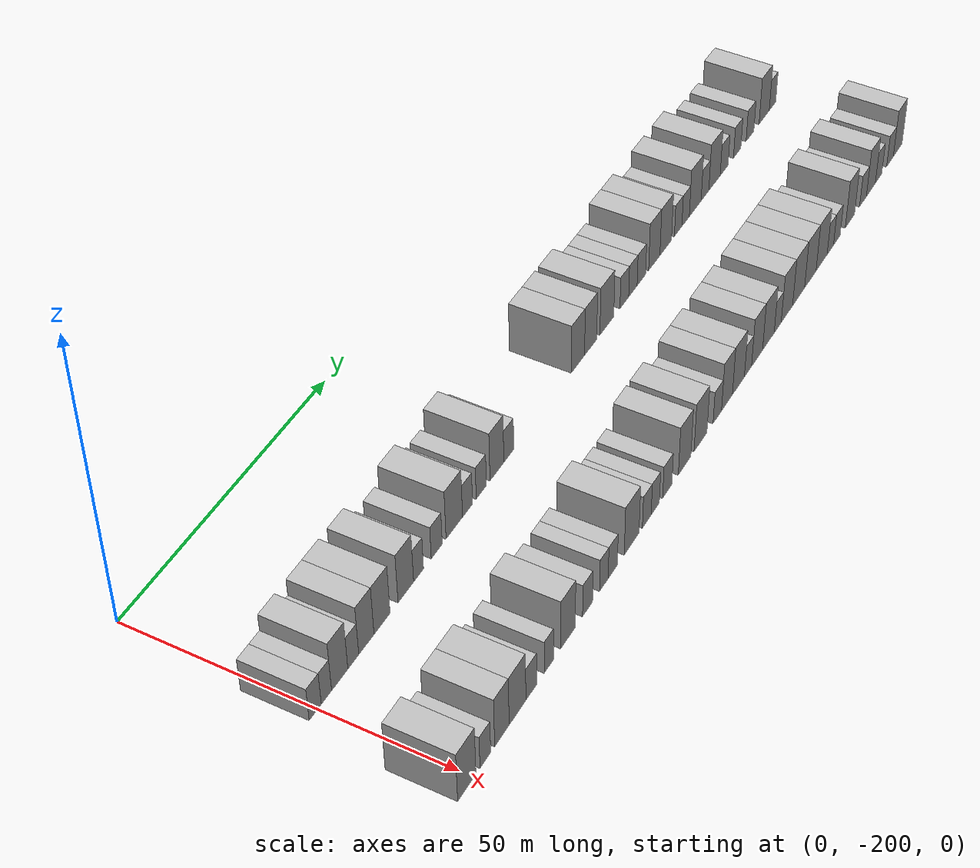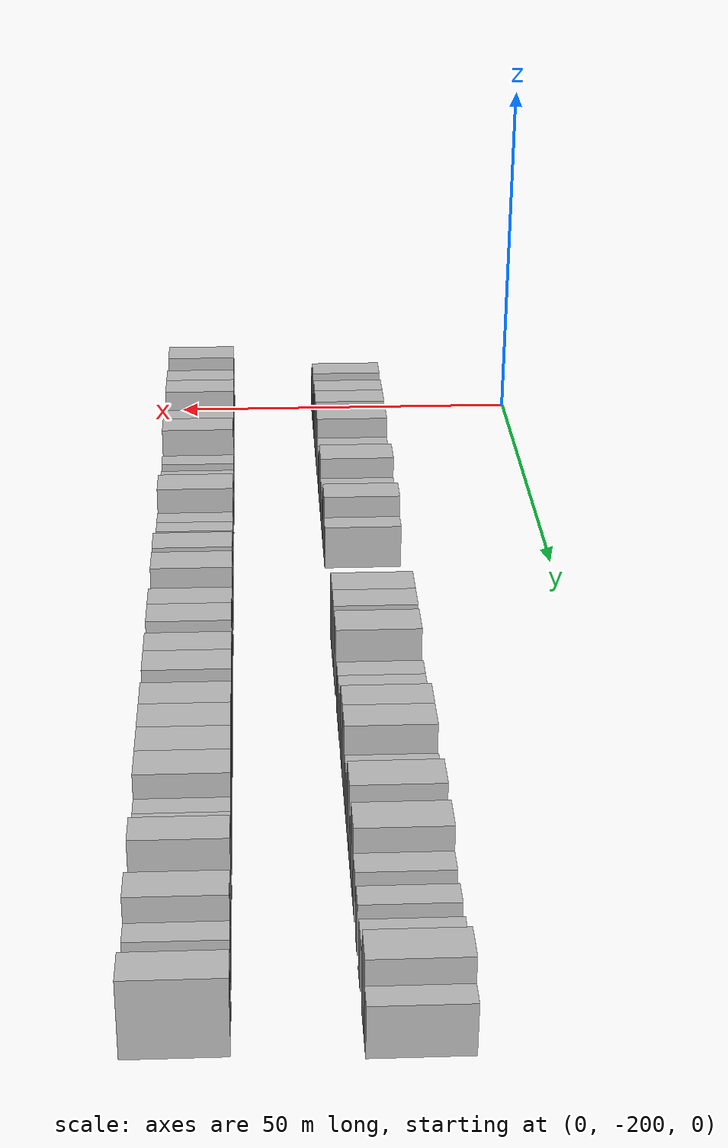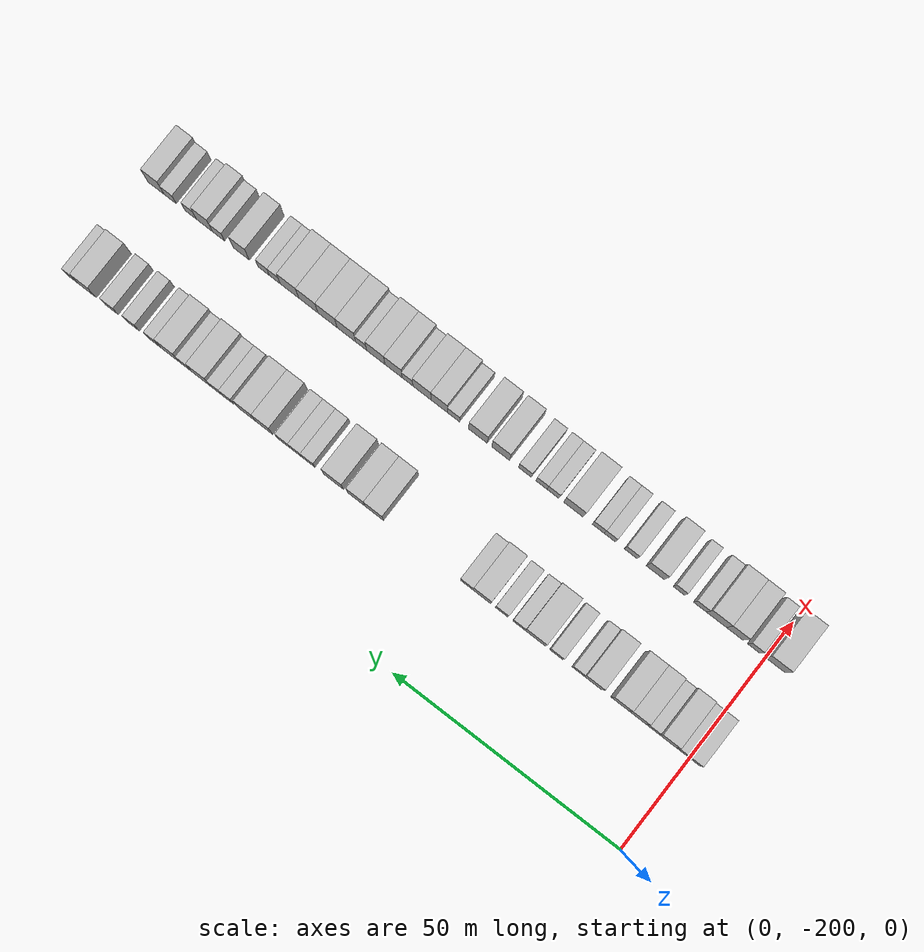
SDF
<sdf version="1.6">
 <world name="default">
  <model name="building_1">
   <static>1</static>
   <pose>25.0000 -200.5957 0 0.000000 0.000000 0.000000</pose>
   <link name="link">
    <pose>0 0 3.00 0 0 0</pose>
    <collision name="collision"><geometry><box><size>10.0000 2.8085 6.0000</size></box></geometry></collision>
    <visual name="visual">
     <cast_shadows>0</cast_shadows>
     <geometry><box><size>10.0000 2.8085 6.0000</size></box></geometry>
     <material>
      <script>
       <uri>model://HANNAS_wall/materials/scripts</uri>
       <uri>model://HANNAS_wall/materials/textures</uri>
       <name>vrc/HANNAS_wall</name>
      </script>
     </material>
    </visual>
   </link>
  </model>
  <model name="building_2">
   <static>1</static>
   <pose>25.0000 -197.9848 0 0.000000 0.000000 0.000000</pose>
   <link name="link">
    <pose>0 0 3.00 0 0 0</pose>
    <collision name="collision"><geometry><box><size>10.0000 2.4134 6.0000</size></box></geometry></collision>
    <visual name="visual">
     <cast_shadows>0</cast_shadows>
     <geometry><box><size>10.0000 2.4134 6.0000</size></box></geometry>
     <material>
      <script>
       <uri>model://HANNAS_wall/materials/scripts</uri>
       <uri>model://HANNAS_wall/materials/textures</uri>
       <name>vrc/HANNAS_wall</name>
      </script>
     </material>
    </visual>
   </link>
  </model>
  <model name="building_3">
   <static>1</static>
   <pose>25.0000 -194.8523 0 0.000000 0.000000 0.000000</pose>
   <link name="link">
    <pose>0 0 4.50 0 0 0</pose>
    <collision name="collision"><geometry><box><size>10.0000 3.8517 9.0000</size></box></geometry></collision>
    <visual name="visual">
     <cast_shadows>0</cast_shadows>
     <geometry><box><size>10.0000 3.8517 9.0000</size></box></geometry>
     <material>
      <script>
       <uri>model://HANNAS_wall/materials/scripts</uri>
       <uri>model://HANNAS_wall/materials/textures</uri>
       <name>vrc/HANNAS_wall</name>
      </script>
     </material>
    </visual>
   </link>
  </model>
  <model name="building_4">
   <static>1</static>
   <pose>25.0000 -191.6137 0 0.000000 0.000000 0.000000</pose>
   <link name="link">
    <pose>0 0 3.00 0 0 0</pose>
    <collision name="collision"><geometry><box><size>10.0000 2.6255 6.0000</size></box></geometry></collision>
    <visual name="visual">
     <cast_shadows>0</cast_shadows>
     <geometry><box><size>10.0000 2.6255 6.0000</size></box></geometry>
     <material>
      <script>
       <uri>model://HANNAS_wall/materials/scripts</uri>
       <uri>model://HANNAS_wall/materials/textures</uri>
       <name>vrc/HANNAS_wall</name>
      </script>
     </material>
    </visual>
   </link>
  </model>
  <model name="building_5">
   <static>1</static>
   <pose>25.0000 -188.4409 0 0.000000 0.000000 0.000000</pose>
   <link name="link">
    <pose>0 0 4.50 0 0 0</pose>
    <collision name="collision"><geometry><box><size>10.0000 3.7200 9.0000</size></box></geometry></collision>
    <visual name="visual">
     <cast_shadows>0</cast_shadows>
     <geometry><box><size>10.0000 3.7200 9.0000</size></box></geometry>
     <material>
      <script>
       <uri>model://HANNAS_wall/materials/scripts</uri>
       <uri>model://HANNAS_wall/materials/textures</uri>
       <name>vrc/HANNAS_wall</name>
      </script>
     </material>
    </visual>
   </link>
  </model>
  <model name="building_6">
   <static>1</static>
   <pose>25.0000 -184.5921 0 0.000000 0.000000 0.000000</pose>
   <link name="link">
    <pose>0 0 4.50 0 0 0</pose>
    <collision name="collision"><geometry><box><size>10.0000 3.9776 9.0000</size></box></geometry></collision>
    <visual name="visual">
     <cast_shadows>0</cast_shadows>
     <geometry><box><size>10.0000 3.9776 9.0000</size></box></geometry>
     <material>
      <script>
       <uri>model://HANNAS_wall/materials/scripts</uri>
       <uri>model://HANNAS_wall/materials/textures</uri>
       <name>vrc/HANNAS_wall</name>
      </script>
     </material>
    </visual>
   </link>
  </model>
  <model name="building_7">
   <static>1</static>
   <pose>25.0000 -178.6157 0 0.000000 0.000000 0.000000</pose>
   <link name="link">
    <pose>0 0 4.50 0 0 0</pose>
    <collision name="collision"><geometry><box><size>10.0000 3.9752 9.0000</size></box></geometry></collision>
    <visual name="visual">
     <cast_shadows>0</cast_shadows>
     <geometry><box><size>10.0000 3.9752 9.0000</size></box></geometry>
     <material>
      <script>
       <uri>model://HANNAS_wall/materials/scripts</uri>
       <uri>model://HANNAS_wall/materials/textures</uri>
       <name>vrc/HANNAS_wall</name>
      </script>
     </material>
    </visual>
   </link>
  </model>
  <model name="building_8">
   <static>1</static>
   <pose>25.0000 -175.3538 0 0.000000 0.000000 0.000000</pose>
   <link name="link">
    <pose>0 0 3.00 0 0 0</pose>
    <collision name="collision"><geometry><box><size>10.0000 2.5488 6.0000</size></box></geometry></collision>
    <visual name="visual">
     <cast_shadows>0</cast_shadows>
     <geometry><box><size>10.0000 2.5488 6.0000</size></box></geometry>
     <material>
      <script>
       <uri>model://HANNAS_wall/materials/scripts</uri>
       <uri>model://HANNAS_wall/materials/textures</uri>
       <name>vrc/HANNAS_wall</name>
      </script>
     </material>
    </visual>
   </link>
  </model>
  <model name="building_9">
   <static>1</static>
   <pose>25.0000 -170.6239 0 0.000000 0.000000 0.000000</pose>
   <link name="link">
    <pose>0 0 3.00 0 0 0</pose>
    <collision name="collision"><geometry><box><size>10.0000 2.9109 6.0000</size></box></geometry></collision>
    <visual name="visual">
     <cast_shadows>0</cast_shadows>
     <geometry><box><size>10.0000 2.9109 6.0000</size></box></geometry>
     <material>
      <script>
       <uri>model://HANNAS_wall/materials/scripts</uri>
       <uri>model://HANNAS_wall/materials/textures</uri>
       <name>vrc/HANNAS_wall</name>
      </script>
     </material>
    </visual>
   </link>
  </model>
  <model name="building_10">
   <static>1</static>
   <pose>25.0000 -165.9567 0 0.000000 0.000000 0.000000</pose>
   <link name="link">
    <pose>0 0 4.50 0 0 0</pose>
    <collision name="collision"><geometry><box><size>10.0000 4.4236 9.0000</size></box></geometry></collision>
    <visual name="visual">
     <cast_shadows>0</cast_shadows>
     <geometry><box><size>10.0000 4.4236 9.0000</size></box></geometry>
     <material>
      <script>
       <uri>model://HANNAS_wall/materials/scripts</uri>
       <uri>model://HANNAS_wall/materials/textures</uri>
       <name>vrc/HANNAS_wall</name>
      </script>
     </material>
    </visual>
   </link>
  </model>
  <model name="building_11">
   <static>1</static>
   <pose>25.0000 -162.3852 0 0.000000 0.000000 0.000000</pose>
   <link name="link">
    <pose>0 0 3.00 0 0 0</pose>
    <collision name="collision"><geometry><box><size>10.0000 2.7193 6.0000</size></box></geometry></collision>
    <visual name="visual">
     <cast_shadows>0</cast_shadows>
     <geometry><box><size>10.0000 2.7193 6.0000</size></box></geometry>
     <material>
      <script>
       <uri>model://HANNAS_wall/materials/scripts</uri>
       <uri>model://HANNAS_wall/materials/textures</uri>
       <name>vrc/HANNAS_wall</name>
      </script>
     </material>
    </visual>
   </link>
  </model>
  <model name="building_12">
   <static>1</static>
   <pose>25.0000 -158.6169 0 0.000000 0.000000 0.000000</pose>
   <link name="link">
    <pose>0 0 3.00 0 0 0</pose>
    <collision name="collision"><geometry><box><size>10.0000 2.8173 6.0000</size></box></geometry></collision>
    <visual name="visual">
     <cast_shadows>0</cast_shadows>
     <geometry><box><size>10.0000 2.8173 6.0000</size></box></geometry>
     <material>
      <script>
       <uri>model://HANNAS_wall/materials/scripts</uri>
       <uri>model://HANNAS_wall/materials/textures</uri>
       <name>vrc/HANNAS_wall</name>
      </script>
     </material>
    </visual>
   </link>
  </model>
  <model name="building_13">
   <static>1</static>
   <pose>25.0000 -154.2598 0 0.000000 0.000000 0.000000</pose>
   <link name="link">
    <pose>0 0 4.50 0 0 0</pose>
    <collision name="collision"><geometry><box><size>10.0000 3.8968 9.0000</size></box></geometry></collision>
    <visual name="visual">
     <cast_shadows>0</cast_shadows>
     <geometry><box><size>10.0000 3.8968 9.0000</size></box></geometry>
     <material>
      <script>
       <uri>model://HANNAS_wall/materials/scripts</uri>
       <uri>model://HANNAS_wall/materials/textures</uri>
       <name>vrc/HANNAS_wall</name>
      </script>
     </material>
    </visual>
   </link>
  </model>
  <model name="building_14">
   <static>1</static>
   <pose>25.0000 -150.8935 0 0.000000 0.000000 0.000000</pose>
   <link name="link">
    <pose>0 0 3.00 0 0 0</pose>
    <collision name="collision"><geometry><box><size>10.0000 2.8358 6.0000</size></box></geometry></collision>
    <visual name="visual">
     <cast_shadows>0</cast_shadows>
     <geometry><box><size>10.0000 2.8358 6.0000</size></box></geometry>
     <material>
      <script>
       <uri>model://HANNAS_wall/materials/scripts</uri>
       <uri>model://HANNAS_wall/materials/textures</uri>
       <name>vrc/HANNAS_wall</name>
      </script>
     </material>
    </visual>
   </link>
  </model>
  <model name="building_15">
   <static>1</static>
   <pose>25.0000 -130.3425 0 0.000000 0.000000 0.000000</pose>
   <link name="link">
    <pose>0 0 4.50 0 0 0</pose>
    <collision name="collision"><geometry><box><size>10.0000 4.0888 9.0000</size></box></geometry></collision>
    <visual name="visual">
     <cast_shadows>0</cast_shadows>
     <geometry><box><size>10.0000 4.0888 9.0000</size></box></geometry>
     <material>
      <script>
       <uri>model://HANNAS_wall/materials/scripts</uri>
       <uri>model://HANNAS_wall/materials/textures</uri>
       <name>vrc/HANNAS_wall</name>
      </script>
     </material>
    </visual>
   </link>
  </model>
  <model name="building_16">
   <static>1</static>
   <pose>25.0000 -126.3942 0 0.000000 0.000000 0.000000</pose>
   <link name="link">
    <pose>0 0 4.50 0 0 0</pose>
    <collision name="collision"><geometry><box><size>10.0000 3.8078 9.0000</size></box></geometry></collision>
    <visual name="visual">
     <cast_shadows>0</cast_shadows>
     <geometry><box><size>10.0000 3.8078 9.0000</size></box></geometry>
     <material>
      <script>
       <uri>model://HANNAS_wall/materials/scripts</uri>
       <uri>model://HANNAS_wall/materials/textures</uri>
       <name>vrc/HANNAS_wall</name>
      </script>
     </material>
    </visual>
   </link>
  </model>
  <model name="building_17">
   <static>1</static>
   <pose>25.0000 -121.2702 0 0.000000 0.000000 0.000000</pose>
   <link name="link">
    <pose>0 0 4.50 0 0 0</pose>
    <collision name="collision"><geometry><box><size>10.0000 4.4401 9.0000</size></box></geometry></collision>
    <visual name="visual">
     <cast_shadows>0</cast_shadows>
     <geometry><box><size>10.0000 4.4401 9.0000</size></box></geometry>
     <material>
      <script>
       <uri>model://HANNAS_wall/materials/scripts</uri>
       <uri>model://HANNAS_wall/materials/textures</uri>
       <name>vrc/HANNAS_wall</name>
      </script>
     </material>
    </visual>
   </link>
  </model>
  <model name="building_18">
   <static>1</static>
   <pose>25.0000 -115.6292 0 0.000000 0.000000 0.000000</pose>
   <link name="link">
    <pose>0 0 3.00 0 0 0</pose>
    <collision name="collision"><geometry><box><size>10.0000 2.8419 6.0000</size></box></geometry></collision>
    <visual name="visual">
     <cast_shadows>0</cast_shadows>
     <geometry><box><size>10.0000 2.8419 6.0000</size></box></geometry>
     <material>
      <script>
       <uri>model://HANNAS_wall/materials/scripts</uri>
       <uri>model://HANNAS_wall/materials/textures</uri>
       <name>vrc/HANNAS_wall</name>
      </script>
     </material>
    </visual>
   </link>
  </model>
  <model name="building_19">
   <static>1</static>
   <pose>25.0000 -112.8165 0 0.000000 0.000000 0.000000</pose>
   <link name="link">
    <pose>0 0 3.00 0 0 0</pose>
    <collision name="collision"><geometry><box><size>10.0000 2.7835 6.0000</size></box></geometry></collision>
    <visual name="visual">
     <cast_shadows>0</cast_shadows>
     <geometry><box><size>10.0000 2.7835 6.0000</size></box></geometry>
     <material>
      <script>
       <uri>model://HANNAS_wall/materials/scripts</uri>
       <uri>model://HANNAS_wall/materials/textures</uri>
       <name>vrc/HANNAS_wall</name>
      </script>
     </material>
    </visual>
   </link>
  </model>
  <model name="building_20">
   <static>1</static>
   <pose>25.0000 -110.0008 0 0.000000 0.000000 0.000000</pose>
   <link name="link">
    <pose>0 0 3.00 0 0 0</pose>
    <collision name="collision"><geometry><box><size>10.0000 2.8480 6.0000</size></box></geometry></collision>
    <visual name="visual">
     <cast_shadows>0</cast_shadows>
     <geometry><box><size>10.0000 2.8480 6.0000</size></box></geometry>
     <material>
      <script>
       <uri>model://HANNAS_wall/materials/scripts</uri>
       <uri>model://HANNAS_wall/materials/textures</uri>
       <name>vrc/HANNAS_wall</name>
      </script>
     </material>
    </visual>
   </link>
  </model>
  <model name="building_21">
   <static>1</static>
   <pose>25.0000 -105.6616 0 0.000000 0.000000 0.000000</pose>
   <link name="link">
    <pose>0 0 4.50 0 0 0</pose>
    <collision name="collision"><geometry><box><size>10.0000 3.8304 9.0000</size></box></geometry></collision>
    <visual name="visual">
     <cast_shadows>0</cast_shadows>
     <geometry><box><size>10.0000 3.8304 9.0000</size></box></geometry>
     <material>
      <script>
       <uri>model://HANNAS_wall/materials/scripts</uri>
       <uri>model://HANNAS_wall/materials/textures</uri>
       <name>vrc/HANNAS_wall</name>
      </script>
     </material>
    </visual>
   </link>
  </model>
  <model name="building_22">
   <static>1</static>
   <pose>25.0000 -101.7530 0 0.000000 0.000000 0.000000</pose>
   <link name="link">
    <pose>0 0 4.50 0 0 0</pose>
    <collision name="collision"><geometry><box><size>10.0000 3.9868 9.0000</size></box></geometry></collision>
    <visual name="visual">
     <cast_shadows>0</cast_shadows>
     <geometry><box><size>10.0000 3.9868 9.0000</size></box></geometry>
     <material>
      <script>
       <uri>model://HANNAS_wall/materials/scripts</uri>
       <uri>model://HANNAS_wall/materials/textures</uri>
       <name>vrc/HANNAS_wall</name>
      </script>
     </material>
    </visual>
   </link>
  </model>
  <model name="building_23">
   <static>1</static>
   <pose>25.0000 -97.4480 0 0.000000 0.000000 0.000000</pose>
   <link name="link">
    <pose>0 0 3.00 0 0 0</pose>
    <collision name="collision"><geometry><box><size>10.0000 2.6234 6.0000</size></box></geometry></collision>
    <visual name="visual">
     <cast_shadows>0</cast_shadows>
     <geometry><box><size>10.0000 2.6234 6.0000</size></box></geometry>
     <material>
      <script>
       <uri>model://HANNAS_wall/materials/scripts</uri>
       <uri>model://HANNAS_wall/materials/textures</uri>
       <name>vrc/HANNAS_wall</name>
      </script>
     </material>
    </visual>
   </link>
  </model>
  <model name="building_24">
   <static>1</static>
   <pose>25.0000 -94.8192 0 0.000000 0.000000 0.000000</pose>
   <link name="link">
    <pose>0 0 3.00 0 0 0</pose>
    <collision name="collision"><geometry><box><size>10.0000 2.6342 6.0000</size></box></geometry></collision>
    <visual name="visual">
     <cast_shadows>0</cast_shadows>
     <geometry><box><size>10.0000 2.6342 6.0000</size></box></geometry>
     <material>
      <script>
       <uri>model://HANNAS_wall/materials/scripts</uri>
       <uri>model://HANNAS_wall/materials/textures</uri>
       <name>vrc/HANNAS_wall</name>
      </script>
     </material>
    </visual>
   </link>
  </model>
  <model name="building_25">
   <static>1</static>
   <pose>25.0000 -91.3993 0 0.000000 0.000000 0.000000</pose>
   <link name="link">
    <pose>0 0 4.50 0 0 0</pose>
    <collision name="collision"><geometry><box><size>10.0000 4.2055 9.0000</size></box></geometry></collision>
    <visual name="visual">
     <cast_shadows>0</cast_shadows>
     <geometry><box><size>10.0000 4.2055 9.0000</size></box></geometry>
     <material>
      <script>
       <uri>model://HANNAS_wall/materials/scripts</uri>
       <uri>model://HANNAS_wall/materials/textures</uri>
       <name>vrc/HANNAS_wall</name>
      </script>
     </material>
    </visual>
   </link>
  </model>
  <model name="building_26">
   <static>1</static>
   <pose>25.0000 -87.9068 0 0.000000 0.000000 0.000000</pose>
   <link name="link">
    <pose>0 0 3.00 0 0 0</pose>
    <collision name="collision"><geometry><box><size>10.0000 2.7796 6.0000</size></box></geometry></collision>
    <visual name="visual">
     <cast_shadows>0</cast_shadows>
     <geometry><box><size>10.0000 2.7796 6.0000</size></box></geometry>
     <material>
      <script>
       <uri>model://HANNAS_wall/materials/scripts</uri>
       <uri>model://HANNAS_wall/materials/textures</uri>
       <name>vrc/HANNAS_wall</name>
      </script>
     </material>
    </visual>
   </link>
  </model>
  <model name="building_27">
   <static>1</static>
   <pose>25.0000 -84.4294 0 0.000000 0.000000 0.000000</pose>
   <link name="link">
    <pose>0 0 4.50 0 0 0</pose>
    <collision name="collision"><geometry><box><size>10.0000 4.1752 9.0000</size></box></geometry></collision>
    <visual name="visual">
     <cast_shadows>0</cast_shadows>
     <geometry><box><size>10.0000 4.1752 9.0000</size></box></geometry>
     <material>
      <script>
       <uri>model://HANNAS_wall/materials/scripts</uri>
       <uri>model://HANNAS_wall/materials/textures</uri>
       <name>vrc/HANNAS_wall</name>
      </script>
     </material>
    </visual>
   </link>
  </model>
  <model name="building_28">
   <static>1</static>
   <pose>25.0000 -80.8772 0 0.000000 0.000000 0.000000</pose>
   <link name="link">
    <pose>0 0 3.00 0 0 0</pose>
    <collision name="collision"><geometry><box><size>10.0000 2.9291 6.0000</size></box></geometry></collision>
    <visual name="visual">
     <cast_shadows>0</cast_shadows>
     <geometry><box><size>10.0000 2.9291 6.0000</size></box></geometry>
     <material>
      <script>
       <uri>model://HANNAS_wall/materials/scripts</uri>
       <uri>model://HANNAS_wall/materials/textures</uri>
       <name>vrc/HANNAS_wall</name>
      </script>
     </material>
    </visual>
   </link>
  </model>
  <model name="building_29">
   <static>1</static>
   <pose>25.0000 -76.0206 0 0.000000 0.000000 0.000000</pose>
   <link name="link">
    <pose>0 0 3.00 0 0 0</pose>
    <collision name="collision"><geometry><box><size>10.0000 2.7842 6.0000</size></box></geometry></collision>
    <visual name="visual">
     <cast_shadows>0</cast_shadows>
     <geometry><box><size>10.0000 2.7842 6.0000</size></box></geometry>
     <material>
      <script>
       <uri>model://HANNAS_wall/materials/scripts</uri>
       <uri>model://HANNAS_wall/materials/textures</uri>
       <name>vrc/HANNAS_wall</name>
      </script>
     </material>
    </visual>
   </link>
  </model>
  <model name="building_30">
   <static>1</static>
   <pose>25.0000 -71.1401 0 0.000000 0.000000 0.000000</pose>
   <link name="link">
    <pose>0 0 3.00 0 0 0</pose>
    <collision name="collision"><geometry><box><size>10.0000 2.9768 6.0000</size></box></geometry></collision>
    <visual name="visual">
     <cast_shadows>0</cast_shadows>
     <geometry><box><size>10.0000 2.9768 6.0000</size></box></geometry>
     <material>
      <script>
       <uri>model://HANNAS_wall/materials/scripts</uri>
       <uri>model://HANNAS_wall/materials/textures</uri>
       <name>vrc/HANNAS_wall</name>
      </script>
     </material>
    </visual>
   </link>
  </model>
  <model name="building_31">
   <static>1</static>
   <pose>25.0000 -65.6525 0 0.000000 0.000000 0.000000</pose>
   <link name="link">
    <pose>0 0 4.50 0 0 0</pose>
    <collision name="collision"><geometry><box><size>10.0000 3.9983 9.0000</size></box></geometry></collision>
    <visual name="visual">
     <cast_shadows>0</cast_shadows>
     <geometry><box><size>10.0000 3.9983 9.0000</size></box></geometry>
     <material>
      <script>
       <uri>model://HANNAS_wall/materials/scripts</uri>
       <uri>model://HANNAS_wall/materials/textures</uri>
       <name>vrc/HANNAS_wall</name>
      </script>
     </material>
    </visual>
   </link>
  </model>
  <model name="building_32">
   <static>1</static>
   <pose>25.0000 -62.3743 0 0.000000 0.000000 0.000000</pose>
   <link name="link">
    <pose>0 0 3.00 0 0 0</pose>
    <collision name="collision"><geometry><box><size>10.0000 2.5583 6.0000</size></box></geometry></collision>
    <visual name="visual">
     <cast_shadows>0</cast_shadows>
     <geometry><box><size>10.0000 2.5583 6.0000</size></box></geometry>
     <material>
      <script>
       <uri>model://HANNAS_wall/materials/scripts</uri>
       <uri>model://HANNAS_wall/materials/textures</uri>
       <name>vrc/HANNAS_wall</name>
      </script>
     </material>
    </visual>
   </link>
  </model>
  <model name="building_98">
   <static>1</static>
   <pose>47.0000 -201.7715 0 0.000000 0.000000 0.000000</pose>
   <link name="link">
    <pose>0 0 4.50 0 0 0</pose>
    <collision name="collision"><geometry><box><size>10.0000 4.4571 9.0000</size></box></geometry></collision>
    <visual name="visual">
     <cast_shadows>0</cast_shadows>
     <geometry><box><size>10.0000 4.4571 9.0000</size></box></geometry>
     <material>
      <script>
       <uri>model://HANNAS_wall/materials/scripts</uri>
       <uri>model://HANNAS_wall/materials/textures</uri>
       <name>vrc/HANNAS_wall</name>
      </script>
     </material>
    </visual>
   </link>
  </model>
  <model name="building_99">
   <static>1</static>
   <pose>47.0000 -197.2151 0 0.000000 0.000000 0.000000</pose>
   <link name="link">
    <pose>0 0 3.00 0 0 0</pose>
    <collision name="collision"><geometry><box><size>10.0000 2.6555 6.0000</size></box></geometry></collision>
    <visual name="visual">
     <cast_shadows>0</cast_shadows>
     <geometry><box><size>10.0000 2.6555 6.0000</size></box></geometry>
     <material>
      <script>
       <uri>model://HANNAS_wall/materials/scripts</uri>
       <uri>model://HANNAS_wall/materials/textures</uri>
       <name>vrc/HANNAS_wall</name>
      </script>
     </material>
    </visual>
   </link>
  </model>
  <model name="building_100">
   <static>1</static>
   <pose>47.0000 -193.0493 0 0.000000 0.000000 0.000000</pose>
   <link name="link">
    <pose>0 0 4.50 0 0 0</pose>
    <collision name="collision"><geometry><box><size>10.0000 3.6762 9.0000</size></box></geometry></collision>
    <visual name="visual">
     <cast_shadows>0</cast_shadows>
     <geometry><box><size>10.0000 3.6762 9.0000</size></box></geometry>
     <material>
      <script>
       <uri>model://HANNAS_wall/materials/scripts</uri>
       <uri>model://HANNAS_wall/materials/textures</uri>
       <name>vrc/HANNAS_wall</name>
      </script>
     </material>
    </visual>
   </link>
  </model>
  <model name="building_101">
   <static>1</static>
   <pose>47.0000 -189.0503 0 0.000000 0.000000 0.000000</pose>
   <link name="link">
    <pose>0 0 4.50 0 0 0</pose>
    <collision name="collision"><geometry><box><size>10.0000 4.3217 9.0000</size></box></geometry></collision>
    <visual name="visual">
     <cast_shadows>0</cast_shadows>
     <geometry><box><size>10.0000 4.3217 9.0000</size></box></geometry>
     <material>
      <script>
       <uri>model://HANNAS_wall/materials/scripts</uri>
       <uri>model://HANNAS_wall/materials/textures</uri>
       <name>vrc/HANNAS_wall</name>
      </script>
     </material>
    </visual>
   </link>
  </model>
  <model name="building_102">
   <static>1</static>
   <pose>47.0000 -185.4716 0 0.000000 0.000000 0.000000</pose>
   <link name="link">
    <pose>0 0 3.00 0 0 0</pose>
    <collision name="collision"><geometry><box><size>10.0000 2.8357 6.0000</size></box></geometry></collision>
    <visual name="visual">
     <cast_shadows>0</cast_shadows>
     <geometry><box><size>10.0000 2.8357 6.0000</size></box></geometry>
     <material>
      <script>
       <uri>model://HANNAS_wall/materials/scripts</uri>
       <uri>model://HANNAS_wall/materials/textures</uri>
       <name>vrc/HANNAS_wall</name>
      </script>
     </material>
    </visual>
   </link>
  </model>
  <model name="building_103">
   <static>1</static>
   <pose>47.0000 -180.8310 0 0.000000 0.000000 0.000000</pose>
   <link name="link">
    <pose>0 0 3.00 0 0 0</pose>
    <collision name="collision"><geometry><box><size>10.0000 2.4455 6.0000</size></box></geometry></collision>
    <visual name="visual">
     <cast_shadows>0</cast_shadows>
     <geometry><box><size>10.0000 2.4455 6.0000</size></box></geometry>
     <material>
      <script>
       <uri>model://HANNAS_wall/materials/scripts</uri>
       <uri>model://HANNAS_wall/materials/textures</uri>
       <name>vrc/HANNAS_wall</name>
      </script>
     </material>
    </visual>
   </link>
  </model>
  <model name="building_104">
   <static>1</static>
   <pose>47.0000 -175.6263 0 0.000000 0.000000 0.000000</pose>
   <link name="link">
    <pose>0 0 4.50 0 0 0</pose>
    <collision name="collision"><geometry><box><size>10.0000 3.9639 9.0000</size></box></geometry></collision>
    <visual name="visual">
     <cast_shadows>0</cast_shadows>
     <geometry><box><size>10.0000 3.9639 9.0000</size></box></geometry>
     <material>
      <script>
       <uri>model://HANNAS_wall/materials/scripts</uri>
       <uri>model://HANNAS_wall/materials/textures</uri>
       <name>vrc/HANNAS_wall</name>
      </script>
     </material>
    </visual>
   </link>
  </model>
  <model name="building_105">
   <static>1</static>
   <pose>47.0000 -170.2367 0 0.000000 0.000000 0.000000</pose>
   <link name="link">
    <pose>0 0 3.00 0 0 0</pose>
    <collision name="collision"><geometry><box><size>10.0000 2.8152 6.0000</size></box></geometry></collision>
    <visual name="visual">
     <cast_shadows>0</cast_shadows>
     <geometry><box><size>10.0000 2.8152 6.0000</size></box></geometry>
     <material>
      <script>
       <uri>model://HANNAS_wall/materials/scripts</uri>
       <uri>model://HANNAS_wall/materials/textures</uri>
       <name>vrc/HANNAS_wall</name>
      </script>
     </material>
    </visual>
   </link>
  </model>
  <model name="building_106">
   <static>1</static>
   <pose>47.0000 -165.6050 0 0.000000 0.000000 0.000000</pose>
   <link name="link">
    <pose>0 0 3.00 0 0 0</pose>
    <collision name="collision"><geometry><box><size>10.0000 2.4483 6.0000</size></box></geometry></collision>
    <visual name="visual">
     <cast_shadows>0</cast_shadows>
     <geometry><box><size>10.0000 2.4483 6.0000</size></box></geometry>
     <material>
      <script>
       <uri>model://HANNAS_wall/materials/scripts</uri>
       <uri>model://HANNAS_wall/materials/textures</uri>
       <name>vrc/HANNAS_wall</name>
      </script>
     </material>
    </visual>
   </link>
  </model>
  <model name="building_107">
   <static>1</static>
   <pose>47.0000 -163.0624 0 0.000000 0.000000 0.000000</pose>
   <link name="link">
    <pose>0 0 3.00 0 0 0</pose>
    <collision name="collision"><geometry><box><size>10.0000 2.6369 6.0000</size></box></geometry></collision>
    <visual name="visual">
     <cast_shadows>0</cast_shadows>
     <geometry><box><size>10.0000 2.6369 6.0000</size></box></geometry>
     <material>
      <script>
       <uri>model://HANNAS_wall/materials/scripts</uri>
       <uri>model://HANNAS_wall/materials/textures</uri>
       <name>vrc/HANNAS_wall</name>
      </script>
     </material>
    </visual>
   </link>
  </model>
  <model name="building_108">
   <static>1</static>
   <pose>47.0000 -157.5596 0 0.000000 0.000000 0.000000</pose>
   <link name="link">
    <pose>0 0 4.50 0 0 0</pose>
    <collision name="collision"><geometry><box><size>10.0000 4.3688 9.0000</size></box></geometry></collision>
    <visual name="visual">
     <cast_shadows>0</cast_shadows>
     <geometry><box><size>10.0000 4.3688 9.0000</size></box></geometry>
     <material>
      <script>
       <uri>model://HANNAS_wall/materials/scripts</uri>
       <uri>model://HANNAS_wall/materials/textures</uri>
       <name>vrc/HANNAS_wall</name>
      </script>
     </material>
    </visual>
   </link>
  </model>
  <model name="building_109">
   <static>1</static>
   <pose>47.0000 -153.0575 0 0.000000 0.000000 0.000000</pose>
   <link name="link">
    <pose>0 0 3.00 0 0 0</pose>
    <collision name="collision"><geometry><box><size>10.0000 2.6354 6.0000</size></box></geometry></collision>
    <visual name="visual">
     <cast_shadows>0</cast_shadows>
     <geometry><box><size>10.0000 2.6354 6.0000</size></box></geometry>
     <material>
      <script>
       <uri>model://HANNAS_wall/materials/scripts</uri>
       <uri>model://HANNAS_wall/materials/textures</uri>
       <name>vrc/HANNAS_wall</name>
      </script>
     </material>
    </visual>
   </link>
  </model>
  <model name="building_110">
   <static>1</static>
   <pose>47.0000 -150.4863 0 0.000000 0.000000 0.000000</pose>
   <link name="link">
    <pose>0 0 3.00 0 0 0</pose>
    <collision name="collision"><geometry><box><size>10.0000 2.5068 6.0000</size></box></geometry></collision>
    <visual name="visual">
     <cast_shadows>0</cast_shadows>
     <geometry><box><size>10.0000 2.5068 6.0000</size></box></geometry>
     <material>
      <script>
       <uri>model://HANNAS_wall/materials/scripts</uri>
       <uri>model://HANNAS_wall/materials/textures</uri>
       <name>vrc/HANNAS_wall</name>
      </script>
     </material>
    </visual>
   </link>
  </model>
  <model name="building_111">
   <static>1</static>
   <pose>47.0000 -146.8004 0 0.000000 0.000000 0.000000</pose>
   <link name="link">
    <pose>0 0 3.00 0 0 0</pose>
    <collision name="collision"><geometry><box><size>10.0000 2.8651 6.0000</size></box></geometry></collision>
    <visual name="visual">
     <cast_shadows>0</cast_shadows>
     <geometry><box><size>10.0000 2.8651 6.0000</size></box></geometry>
     <material>
      <script>
       <uri>model://HANNAS_wall/materials/scripts</uri>
       <uri>model://HANNAS_wall/materials/textures</uri>
       <name>vrc/HANNAS_wall</name>
      </script>
     </material>
    </visual>
   </link>
  </model>
  <model name="building_112">
   <static>1</static>
   <pose>47.0000 -141.3856 0 0.000000 0.000000 0.000000</pose>
   <link name="link">
    <pose>0 0 4.50 0 0 0</pose>
    <collision name="collision"><geometry><box><size>10.0000 3.9644 9.0000</size></box></geometry></collision>
    <visual name="visual">
     <cast_shadows>0</cast_shadows>
     <geometry><box><size>10.0000 3.9644 9.0000</size></box></geometry>
     <material>
      <script>
       <uri>model://HANNAS_wall/materials/scripts</uri>
       <uri>model://HANNAS_wall/materials/textures</uri>
       <name>vrc/HANNAS_wall</name>
      </script>
     </material>
    </visual>
   </link>
  </model>
  <model name="building_113">
   <static>1</static>
   <pose>47.0000 -136.3182 0 0.000000 0.000000 0.000000</pose>
   <link name="link">
    <pose>0 0 4.50 0 0 0</pose>
    <collision name="collision"><geometry><box><size>10.0000 4.1704 9.0000</size></box></geometry></collision>
    <visual name="visual">
     <cast_shadows>0</cast_shadows>
     <geometry><box><size>10.0000 4.1704 9.0000</size></box></geometry>
     <material>
      <script>
       <uri>model://HANNAS_wall/materials/scripts</uri>
       <uri>model://HANNAS_wall/materials/textures</uri>
       <name>vrc/HANNAS_wall</name>
      </script>
     </material>
    </visual>
   </link>
  </model>
  <model name="building_114">
   <static>1</static>
   <pose>47.0000 -130.8496 0 0.000000 0.000000 0.000000</pose>
   <link name="link">
    <pose>0 0 3.00 0 0 0</pose>
    <collision name="collision"><geometry><box><size>10.0000 2.7667 6.0000</size></box></geometry></collision>
    <visual name="visual">
     <cast_shadows>0</cast_shadows>
     <geometry><box><size>10.0000 2.7667 6.0000</size></box></geometry>
     <material>
      <script>
       <uri>model://HANNAS_wall/materials/scripts</uri>
       <uri>model://HANNAS_wall/materials/textures</uri>
       <name>vrc/HANNAS_wall</name>
      </script>
     </material>
    </visual>
   </link>
  </model>
  <model name="building_115">
   <static>1</static>
   <pose>47.0000 -127.6435 0 0.000000 0.000000 0.000000</pose>
   <link name="link">
    <pose>0 0 4.50 0 0 0</pose>
    <collision name="collision"><geometry><box><size>10.0000 3.6454 9.0000</size></box></geometry></collision>
    <visual name="visual">
     <cast_shadows>0</cast_shadows>
     <geometry><box><size>10.0000 3.6454 9.0000</size></box></geometry>
     <material>
      <script>
       <uri>model://HANNAS_wall/materials/scripts</uri>
       <uri>model://HANNAS_wall/materials/textures</uri>
       <name>vrc/HANNAS_wall</name>
      </script>
     </material>
    </visual>
   </link>
  </model>
  <model name="building_116">
   <static>1</static>
   <pose>47.0000 -123.8031 0 0.000000 0.000000 0.000000</pose>
   <link name="link">
    <pose>0 0 4.50 0 0 0</pose>
    <collision name="collision"><geometry><box><size>10.0000 4.0355 9.0000</size></box></geometry></collision>
    <visual name="visual">
     <cast_shadows>0</cast_shadows>
     <geometry><box><size>10.0000 4.0355 9.0000</size></box></geometry>
     <material>
      <script>
       <uri>model://HANNAS_wall/materials/scripts</uri>
       <uri>model://HANNAS_wall/materials/textures</uri>
       <name>vrc/HANNAS_wall</name>
      </script>
     </material>
    </visual>
   </link>
  </model>
  <model name="building_117">
   <static>1</static>
   <pose>47.0000 -120.5614 0 0.000000 0.000000 0.000000</pose>
   <link name="link">
    <pose>0 0 3.00 0 0 0</pose>
    <collision name="collision"><geometry><box><size>10.0000 2.4478 6.0000</size></box></geometry></collision>
    <visual name="visual">
     <cast_shadows>0</cast_shadows>
     <geometry><box><size>10.0000 2.4478 6.0000</size></box></geometry>
     <material>
      <script>
       <uri>model://HANNAS_wall/materials/scripts</uri>
       <uri>model://HANNAS_wall/materials/textures</uri>
       <name>vrc/HANNAS_wall</name>
      </script>
     </material>
    </visual>
   </link>
  </model>
  <model name="building_118">
   <static>1</static>
   <pose>47.0000 -117.4169 0 0.000000 0.000000 0.000000</pose>
   <link name="link">
    <pose>0 0 4.50 0 0 0</pose>
    <collision name="collision"><geometry><box><size>10.0000 3.8413 9.0000</size></box></geometry></collision>
    <visual name="visual">
     <cast_shadows>0</cast_shadows>
     <geometry><box><size>10.0000 3.8413 9.0000</size></box></geometry>
     <material>
      <script>
       <uri>model://HANNAS_wall/materials/scripts</uri>
       <uri>model://HANNAS_wall/materials/textures</uri>
       <name>vrc/HANNAS_wall</name>
      </script>
     </material>
    </visual>
   </link>
  </model>
  <model name="building_119">
   <static>1</static>
   <pose>47.0000 -113.4544 0 0.000000 0.000000 0.000000</pose>
   <link name="link">
    <pose>0 0 4.50 0 0 0</pose>
    <collision name="collision"><geometry><box><size>10.0000 4.0835 9.0000</size></box></geometry></collision>
    <visual name="visual">
     <cast_shadows>0</cast_shadows>
     <geometry><box><size>10.0000 4.0835 9.0000</size></box></geometry>
     <material>
      <script>
       <uri>model://HANNAS_wall/materials/scripts</uri>
       <uri>model://HANNAS_wall/materials/textures</uri>
       <name>vrc/HANNAS_wall</name>
      </script>
     </material>
    </visual>
   </link>
  </model>
  <model name="building_120">
   <static>1</static>
   <pose>47.0000 -110.1676 0 0.000000 0.000000 0.000000</pose>
   <link name="link">
    <pose>0 0 3.00 0 0 0</pose>
    <collision name="collision"><geometry><box><size>10.0000 2.4901 6.0000</size></box></geometry></collision>
    <visual name="visual">
     <cast_shadows>0</cast_shadows>
     <geometry><box><size>10.0000 2.4901 6.0000</size></box></geometry>
     <material>
      <script>
       <uri>model://HANNAS_wall/materials/scripts</uri>
       <uri>model://HANNAS_wall/materials/textures</uri>
       <name>vrc/HANNAS_wall</name>
      </script>
     </material>
    </visual>
   </link>
  </model>
  <model name="building_121">
   <static>1</static>
   <pose>47.0000 -106.8577 0 0.000000 0.000000 0.000000</pose>
   <link name="link">
    <pose>0 0 4.50 0 0 0</pose>
    <collision name="collision"><geometry><box><size>10.0000 4.1296 9.0000</size></box></geometry></collision>
    <visual name="visual">
     <cast_shadows>0</cast_shadows>
     <geometry><box><size>10.0000 4.1296 9.0000</size></box></geometry>
     <material>
      <script>
       <uri>model://HANNAS_wall/materials/scripts</uri>
       <uri>model://HANNAS_wall/materials/textures</uri>
       <name>vrc/HANNAS_wall</name>
      </script>
     </material>
    </visual>
   </link>
  </model>
  <model name="building_122">
   <static>1</static>
   <pose>47.0000 -102.6061 0 0.000000 0.000000 0.000000</pose>
   <link name="link">
    <pose>0 0 4.50 0 0 0</pose>
    <collision name="collision"><geometry><box><size>10.0000 4.3737 9.0000</size></box></geometry></collision>
    <visual name="visual">
     <cast_shadows>0</cast_shadows>
     <geometry><box><size>10.0000 4.3737 9.0000</size></box></geometry>
     <material>
      <script>
       <uri>model://HANNAS_wall/materials/scripts</uri>
       <uri>model://HANNAS_wall/materials/textures</uri>
       <name>vrc/HANNAS_wall</name>
      </script>
     </material>
    </visual>
   </link>
  </model>
  <model name="building_123">
   <static>1</static>
   <pose>47.0000 -98.2691 0 0.000000 0.000000 0.000000</pose>
   <link name="link">
    <pose>0 0 4.50 0 0 0</pose>
    <collision name="collision"><geometry><box><size>10.0000 4.3003 9.0000</size></box></geometry></collision>
    <visual name="visual">
     <cast_shadows>0</cast_shadows>
     <geometry><box><size>10.0000 4.3003 9.0000</size></box></geometry>
     <material>
      <script>
       <uri>model://HANNAS_wall/materials/scripts</uri>
       <uri>model://HANNAS_wall/materials/textures</uri>
       <name>vrc/HANNAS_wall</name>
      </script>
     </material>
    </visual>
   </link>
  </model>
  <model name="building_124">
   <static>1</static>
   <pose>47.0000 -94.0230 0 0.000000 0.000000 0.000000</pose>
   <link name="link">
    <pose>0 0 4.50 0 0 0</pose>
    <collision name="collision"><geometry><box><size>10.0000 4.1918 9.0000</size></box></geometry></collision>
    <visual name="visual">
     <cast_shadows>0</cast_shadows>
     <geometry><box><size>10.0000 4.1918 9.0000</size></box></geometry>
     <material>
      <script>
       <uri>model://HANNAS_wall/materials/scripts</uri>
       <uri>model://HANNAS_wall/materials/textures</uri>
       <name>vrc/HANNAS_wall</name>
      </script>
     </material>
    </visual>
   </link>
  </model>
  <model name="building_125">
   <static>1</static>
   <pose>47.0000 -90.7101 0 0.000000 0.000000 0.000000</pose>
   <link name="link">
    <pose>0 0 3.00 0 0 0</pose>
    <collision name="collision"><geometry><box><size>10.0000 2.4340 6.0000</size></box></geometry></collision>
    <visual name="visual">
     <cast_shadows>0</cast_shadows>
     <geometry><box><size>10.0000 2.4340 6.0000</size></box></geometry>
     <material>
      <script>
       <uri>model://HANNAS_wall/materials/scripts</uri>
       <uri>model://HANNAS_wall/materials/textures</uri>
       <name>vrc/HANNAS_wall</name>
      </script>
     </material>
    </visual>
   </link>
  </model>
  <model name="building_126">
   <static>1</static>
   <pose>47.0000 -88.2042 0 0.000000 0.000000 0.000000</pose>
   <link name="link">
    <pose>0 0 3.00 0 0 0</pose>
    <collision name="collision"><geometry><box><size>10.0000 2.5779 6.0000</size></box></geometry></collision>
    <visual name="visual">
     <cast_shadows>0</cast_shadows>
     <geometry><box><size>10.0000 2.5779 6.0000</size></box></geometry>
     <material>
      <script>
       <uri>model://HANNAS_wall/materials/scripts</uri>
       <uri>model://HANNAS_wall/materials/textures</uri>
       <name>vrc/HANNAS_wall</name>
      </script>
     </material>
    </visual>
   </link>
  </model>
  <model name="building_127">
   <static>1</static>
   <pose>47.0000 -83.0903 0 0.000000 0.000000 0.000000</pose>
   <link name="link">
    <pose>0 0 4.50 0 0 0</pose>
    <collision name="collision"><geometry><box><size>10.0000 3.6500 9.0000</size></box></geometry></collision>
    <visual name="visual">
     <cast_shadows>0</cast_shadows>
     <geometry><box><size>10.0000 3.6500 9.0000</size></box></geometry>
     <material>
      <script>
       <uri>model://HANNAS_wall/materials/scripts</uri>
       <uri>model://HANNAS_wall/materials/textures</uri>
       <name>vrc/HANNAS_wall</name>
      </script>
     </material>
    </visual>
   </link>
  </model>
  <model name="building_128">
   <static>1</static>
   <pose>47.0000 -77.8969 0 0.000000 0.000000 0.000000</pose>
   <link name="link">
    <pose>0 0 3.00 0 0 0</pose>
    <collision name="collision"><geometry><box><size>10.0000 2.7368 6.0000</size></box></geometry></collision>
    <visual name="visual">
     <cast_shadows>0</cast_shadows>
     <geometry><box><size>10.0000 2.7368 6.0000</size></box></geometry>
     <material>
      <script>
       <uri>model://HANNAS_wall/materials/scripts</uri>
       <uri>model://HANNAS_wall/materials/textures</uri>
       <name>vrc/HANNAS_wall</name>
      </script>
     </material>
    </visual>
   </link>
  </model>
  <model name="building_129">
   <static>1</static>
   <pose>47.0000 -74.7090 0 0.000000 0.000000 0.000000</pose>
   <link name="link">
    <pose>0 0 4.50 0 0 0</pose>
    <collision name="collision"><geometry><box><size>10.0000 3.6389 9.0000</size></box></geometry></collision>
    <visual name="visual">
     <cast_shadows>0</cast_shadows>
     <geometry><box><size>10.0000 3.6389 9.0000</size></box></geometry>
     <material>
      <script>
       <uri>model://HANNAS_wall/materials/scripts</uri>
       <uri>model://HANNAS_wall/materials/textures</uri>
       <name>vrc/HANNAS_wall</name>
      </script>
     </material>
    </visual>
   </link>
  </model>
  <model name="building_130">
   <static>1</static>
   <pose>47.0000 -71.5662 0 0.000000 0.000000 0.000000</pose>
   <link name="link">
    <pose>0 0 3.00 0 0 0</pose>
    <collision name="collision"><geometry><box><size>10.0000 2.6467 6.0000</size></box></geometry></collision>
    <visual name="visual">
     <cast_shadows>0</cast_shadows>
     <geometry><box><size>10.0000 2.6467 6.0000</size></box></geometry>
     <material>
      <script>
       <uri>model://HANNAS_wall/materials/scripts</uri>
       <uri>model://HANNAS_wall/materials/textures</uri>
       <name>vrc/HANNAS_wall</name>
      </script>
     </material>
    </visual>
   </link>
  </model>
  <model name="building_131">
   <static>1</static>
   <pose>47.0000 -66.8589 0 0.000000 0.000000 0.000000</pose>
   <link name="link">
    <pose>0 0 3.00 0 0 0</pose>
    <collision name="collision"><geometry><box><size>10.0000 2.7679 6.0000</size></box></geometry></collision>
    <visual name="visual">
     <cast_shadows>0</cast_shadows>
     <geometry><box><size>10.0000 2.7679 6.0000</size></box></geometry>
     <material>
      <script>
       <uri>model://HANNAS_wall/materials/scripts</uri>
       <uri>model://HANNAS_wall/materials/textures</uri>
       <name>vrc/HANNAS_wall</name>
      </script>
     </material>
    </visual>
   </link>
  </model>
  <model name="building_132">
   <static>1</static>
   <pose>47.0000 -63.6281 0 0.000000 0.000000 0.000000</pose>
   <link name="link">
    <pose>0 0 4.50 0 0 0</pose>
    <collision name="collision"><geometry><box><size>10.0000 3.6937 9.0000</size></box></geometry></collision>
    <visual name="visual">
     <cast_shadows>0</cast_shadows>
     <geometry><box><size>10.0000 3.6937 9.0000</size></box></geometry>
     <material>
      <script>
       <uri>model://HANNAS_wall/materials/scripts</uri>
       <uri>model://HANNAS_wall/materials/textures</uri>
       <name>vrc/HANNAS_wall</name>
      </script>
     </material>
    </visual>
   </link>
  </model>
 </world>
</sdf>
